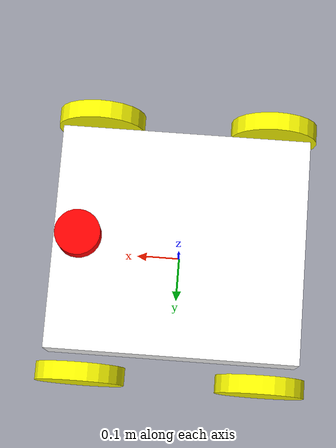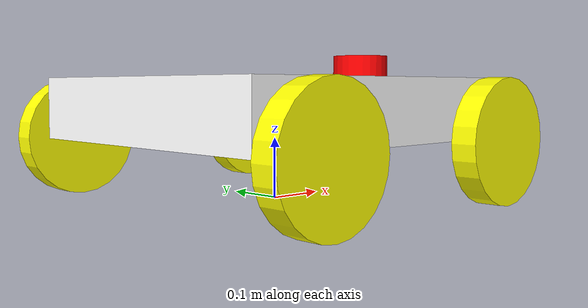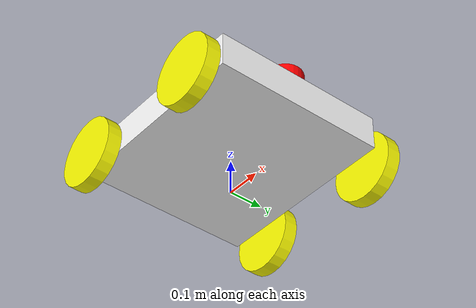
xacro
<?xml version="1.0"?>
<robot xmlns:xacro="http://www.ros.org/wiki/xacro" name="ford_robot">

    <xacro:include filename="mecabot.xacro"/>
    <xacro:include filename="lidar.xacro"/>

    <xacro:include filename="gazebo_control.xacro"/>

</robot>

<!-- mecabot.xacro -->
<robot xmlns:xacro="http://www.ros.org/wiki/xacro">

    <xacro:include filename="inertial_macros.xacro"/>

    <material name="white">
        <color rgba="1 1 1 1" />
    </material>

    <material name="orange">
        <color rgba="1 0.3 0.1 1"/>
    </material>

    <material name="blue">
        <color rgba="0.2 0.2 1 1"/>
    </material>

    <material name="black">
        <color rgba="0 0 0 1"/>
    </material>

    <material name="red">
        <color rgba="1 0 0 1"/>
    </material>

    <!-- BASE LINK -->

    <link name="base_link">
    </link>

    <!-- BASE FOOTRPRINT LINK-->

    <joint name="base_footprint_joint" type="fixed">
        <parent link="base_link"/>
        <child link="base_footprint"/>
        <origin xyz="0.0 0.0 0.0"/>
    </joint>

    <link name="base_footprint">
    </link>

    <!-- Chassis Link -->
    <link name="chassis">
        <visual>
            <origin xyz=" 0 0 0.15" rpy="0 0 0" />
            <geometry>
                <box size="0.554 0.500 0.1"/>
            </geometry>
            <material name="white"/>
        </visual>
        <collision>
            <origin xyz=" 0 0 0.15"/>
            <geometry>
                <box size="0.554 0.500 0.1"/>
            </geometry>
        </collision>
        <xacro:inertial_box mass="10" x="0.554" y="0.500" z="0.1">
                <origin xyz=" 0 0 0.15" rpy="0.0 0.0 0.0"/>
        </xacro:inertial_box>
    </link>

    <joint name="chassis_joint" type="fixed">
        <parent link="base_link"/>
        <child link="chassis"/>
        <origin xyz="0.0 0.0 0.0"/>
    </joint>

    <!-- All Wheel Links and Joints -->

    <xacro:macro name="wheel" params="name x y z">
        <joint name="${name}_wheel_joint" type="continuous">
            <origin xyz="${x} ${y} ${z}" rpy="-${pi/2} 0.0 0.0"/>
            <parent link="chassis"/>
            <child link="${name}_wheel"/>
            <limit effort="1000.0" velocity="5.0"/>
            <axis xyz="0 0 1"/>
        </joint>

        <link name="${name}_wheel">
            <visual name="">
                <origin xyz="0.0 0.0 0.0" rpy="0.0 0.0 0.0"/>
                <geometry>
                    <cylinder radius="0.1" length="0.04"/>
                </geometry>
                <material name="orange">
                    <color rgba="1.0 1.0 0.0 1.0"/>
                </material>
            </visual>
            <collision>
                <origin xyz="0.0 0.0 0.0" rpy="0.0 0.0 0.0"/>
                <geometry>
                    <cylinder radius="0.1" length="0.04"/>
                </geometry>
            </collision>
            <xacro:inertial_cylinder mass="1" length="0.04" radius="0.1">
                <origin xyz="0.0 0.0 0.0" rpy="0.0 0.0 0.0"/>
            </xacro:inertial_cylinder>
        </link>
    </xacro:macro>

    <!-- Wheel Creating using macros -->
    <xacro:wheel name="front_left"  x="0.201" y ="0.295" z="0.1"/>
    <xacro:wheel name="rear_left" x="-0.201" y ="0.295" z="0.1"/>
    <xacro:wheel name="front_right"  x="0.201" y ="-0.295" z="0.1"/>
    <xacro:wheel name="rear_right"   x="-0.201" y ="-0.295" z="0.1"/>

</robot>

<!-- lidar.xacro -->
<robot xmlns:xacro="http://www.ros.org/wiki/xacro">

    <joint name="laser_joint" type="fixed">

        <parent link="chassis"/>
        <child link="laser_frame"/>
        <origin xyz="0.22 0 0.222" rpy="0 0 0"/>

    </joint>

    <link name="laser_frame">
        <visual>
            <origin xyz="0.0 0.0 0.0" rpy="0.0 0.0 0.0"/>
            <geometry>
                <cylinder radius="0.05" length="0.04"/>
            </geometry>
            <material name="red"/>
        </visual>
        <collision>
            <origin xyz="0.0 0.0 0.0" rpy="0.0 0.0 0.0"/>
            <geometry>
                <cylinder radius="0.05" length="0.04"/>
            </geometry>
        </collision>
        <xacro:inertial_cylinder mass="1" radius="0.05" length="0.04">
            <origin xyz="0.0 0.0 0.0" rpy="0.0 0.0 0.0"/>
        </xacro:inertial_cylinder>
    </link>
    <gazebo reference="laser_frame">
        <material>Gazebo/FlatBlack</material>
        <sensor type="ray" name="laser">
            <pose>0 0 0 0 0 0</pose>
            <visualize>true</visualize>
            <update_rate>30</update_rate>
            <ray>
                <scan>
                    <horizontal>
                        <samples>360</samples>
                        <resolution>1</resolution>
                        <min_angle>-3.14</min_angle>
                        <max_angle>3.14</max_angle>
                    </horizontal>
                </scan>
                <range>
                    <min>0.3</min>
                    <max>12</max>
                    <resolution>0.01</resolution>
                </range>
            </ray>
            <plugin name="laser_controller" filename="libgazebo_ros_ray_sensor.so">
                <ros>
                    <argument>~/out:=scan</argument>
                </ros>
                <output_type>sensor_msgs/LaserScan</output_type>
                <frame_name>laser_frame</frame_name>
            </plugin>

        </sensor>
    </gazebo>
</robot>
